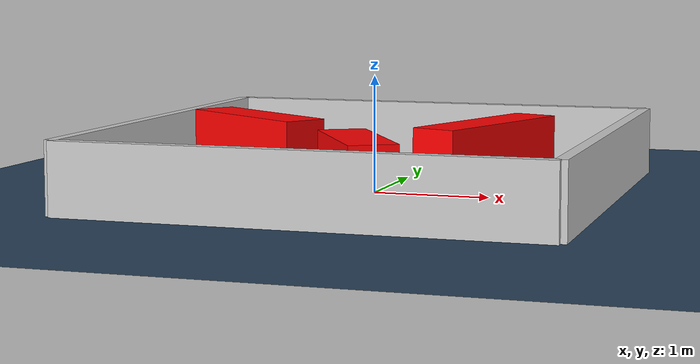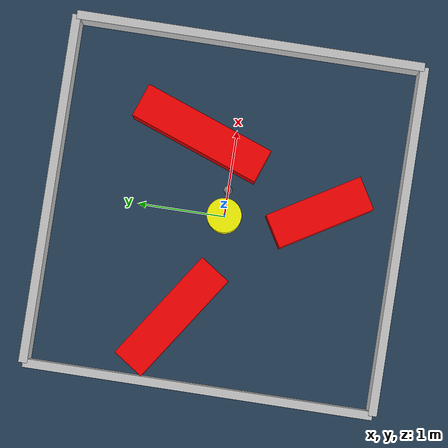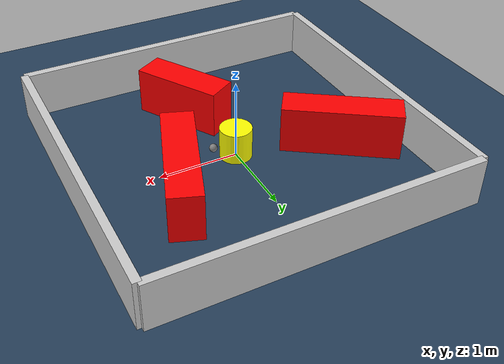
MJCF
<?xml version="1.0" ?>
<mujoco model="generated_environment">
  <option timestep="0.01" integrator="RK4" cone="elliptic"/>
  <default>
    <geom density="1"/>
  </default>
  <asset>
    <texture builtin="gradient" height="3072" rgb1="0.3 0.5 0.7" rgb2="0 0 0" type="skybox" width="512"/>
    <texture builtin="checker" height="300" mark="edge" markrgb="0.8 0.8 0.8" name="groundplane" rgb1="0.2 0.3 0.4" rgb2="0.1 0.2 0.3" type="2d" width="300"/>
    <material name="groundplane" reflectance="0.2" texrepeat="5 5" texture="groundplane" texuniform="true"/>
    <material name="robot" rgba="0.0 1.0 0.0 1"/>
  </asset>
  <worldbody>
    <light dir="0 0 -1" directional="true" pos="0 0 1.5"/>
    <geom condim="4" friction="1.0 0.005 0.001" material="groundplane" name="floor" size="0 0 0.05" type="plane"/>
    <body name="walls">
      <geom name="wall_1" condim="4" pos="-2.0 0.0 0.3" rgba="0.800000011920929 0.800000011920929 0.800000011920929 1.0" size="0.05 2.0 0.3" type="box"/>
      <geom name="wall_2" condim="4" pos="2.0 0.0 0.3" rgba="0.800000011920929 0.800000011920929 0.800000011920929 1.0" size="0.05 2.0 0.3" type="box"/>
      <geom name="wall_3" condim="4" pos="0.0 -2.0 0.3" rgba="0.800000011920929 0.800000011920929 0.800000011920929 1.0" size="2.0 0.05 0.3" type="box"/>
      <geom name="wall_4" condim="4" pos="0.0 2.0 0.3" rgba="0.800000011920929 0.800000011920929 0.800000011920929 1.0" size="2.0 0.05 0.3" type="box"/>
    </body>
    <body name="robot">
      <joint name="joint_x" type="slide" pos="0 0 0" axis="1 0 0"/>
      <joint name="joint_y" type="slide" pos="0 0 0" axis="0 1 0"/>
      <geom name="robot" type="sphere" pos="0.3 0.0 0.2" size="0.05" mass="5." friction="1.0 0.005 0.0001" condim="4" rgba="0.5 0.5 0.5 1.0"/>
      <site name="sensor_ball"/>
    </body>
    <body name="obstacle_movable_1">
      <geom name="obstacle_movable_1" condim="4" pos="0.0 0.0 0.2" euler="0 0 0.0" friction="1.0 0.005 0.001" rgba="1.0 1.0 0.0 1.0" size="0.2 0.2 0.0" type="cylinder" mass="0.1"/>
      <joint type="free"/>
    </body>
    <body name="obstacle_2_static">
      <geom name="obstacle_2_static" condim="4" pos="-1.2318614461300632 0.41398790937334584 0.3" euler="0 0 145.9307685770594" friction="1.0 0.005 0.001" rgba="1 0 0 1" size="0.7291372114609183 0.2 0.3" type="box"/>
    </body>
    <body name="obstacle_3_static">
      <geom name="obstacle_3_static" condim="4" pos="0.8783439685570587 0.39181535275854684 0.3" euler="0 0 69.87943244709697" friction="1.0 0.005 0.001" rgba="1 0 0 1" size="0.7887954892368981 0.2 0.3" type="box"/>
    </body>
    <body name="obstacle_4_static">
      <geom name="obstacle_4_static" condim="4" pos="0.1907098722603353 -1.0684037210162423 0.3" euler="0 0 120.7772616976007" friction="1.0 0.005 0.001" rgba="1 0 0 1" size="0.5779066030096212 0.2 0.3" type="box"/>
    </body>
  </worldbody>
  <actuator>
    <motor name="actuator_x" joint="joint_x" gear="1" ctrlrange="-1 1"/>
    <motor name="actuator_y" joint="joint_y" gear="1" ctrlrange="-1 1"/>
  </actuator>
</mujoco>
